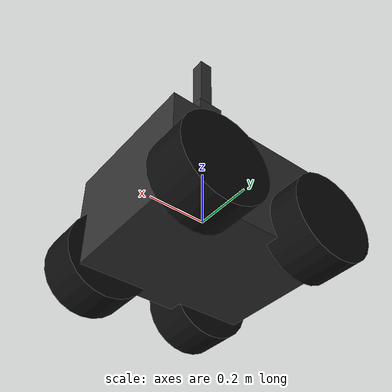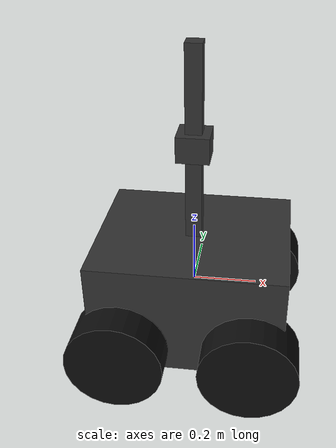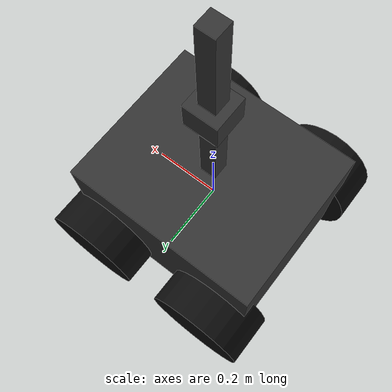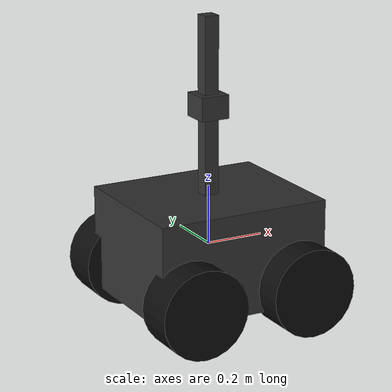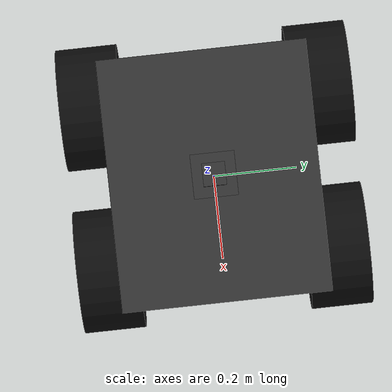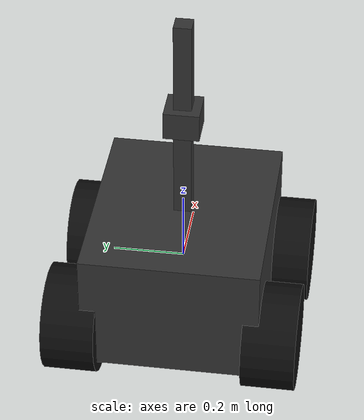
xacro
<?xml version="1.0"?>
<robot name="egrobots_rover">
  <material name="dark_grey">
    <color rgba="0.2 0.2 0.2 1"/>
  </material>
  <material name="black">
    <color rgba="0.05 0.05 0.05 1"/>
  </material>
  <link name="base_link">
    <visual>
      <geometry>
        <box size="0.6 0.5 0.35"/>
      </geometry>
      <origin xyz="0 0 0" rpy="0 0 0"/>
      <material name="dark_grey"/>
    </visual>
    <collision>
      <geometry>
        <box size="0.6 0.5 0.35"/>
      </geometry>
      <origin xyz="0 0 0" rpy="0 0 0"/>
    </collision>
    <inertial>
      <mass value="10.0"/>
      <inertia ixx="0.3" ixy="0.0" ixz="0.0" iyy="0.4" iyz="0.0" izz="0.5"/>
    </inertial>
  </link>
  <link name="wheel_front_left">
    <visual>
      <geometry>
        <cylinder radius="0.15" length="0.15"/>
      </geometry>
      <origin xyz="0 0 0" rpy="1.5708 0 0"/>
      <material name="black"/>
    </visual>
    <collision>
      <geometry>
        <cylinder radius="0.15" length="0.15"/>
      </geometry>
      <origin xyz="0 0 0" rpy="1.5708 0 0"/>
    </collision>
    <inertial>
      <mass value="1.0"/>
      <inertia ixx="0.0075" ixy="0.0" ixz="0.0" iyy="0.01125" iyz="0.0" izz="0.0075"/>
    </inertial>
  </link>

  <joint name="wheel_front_left_joint" type="continuous">
    <parent link="base_link"/>
    <child link="wheel_front_left"/>
    <origin xyz="0.2 0.28 -0.1" rpy="0 0 0"/>
    <axis xyz="0 1 0"/>
  </joint>
  <link name="wheel_front_right">
    <visual>
      <geometry>
        <cylinder radius="0.15" length="0.15"/>
      </geometry>
      <origin xyz="0 0 0" rpy="1.5708 0 0"/>
      <material name="black"/>
    </visual>
    <collision>
      <geometry>
        <cylinder radius="0.15" length="0.15"/>
      </geometry>
      <origin xyz="0 0 0" rpy="1.5708 0 0"/>
    </collision>
    <inertial>
      <mass value="1.0"/>
      <inertia ixx="0.0075" ixy="0.0" ixz="0.0" iyy="0.01125" iyz="0.0" izz="0.0075"/>
    </inertial>
  </link>

  <joint name="wheel_front_right_joint" type="continuous">
    <parent link="base_link"/>
    <child link="wheel_front_right"/>
    <origin xyz="0.2 -0.28 -0.1" rpy="0 0 0"/>
    <axis xyz="0 1 0"/>
  </joint>

  <link name="wheel_rear_left">
    <visual>
      <geometry>
        <cylinder radius="0.15" length="0.15"/>
      </geometry>
      <origin xyz="0 0 0" rpy="1.5708 0 0"/>
      <material name="black"/>
    </visual>
    <collision>
      <geometry>
        <cylinder radius="0.15" length="0.15"/>
      </geometry>
      <origin xyz="0 0 0" rpy="1.5708 0 0"/>
    </collision>
    <inertial>
      <mass value="1.0"/>
      <inertia ixx="0.0075" ixy="0.0" ixz="0.0" iyy="0.01125" iyz="0.0" izz="0.0075"/>
    </inertial>
  </link>

  <joint name="wheel_rear_left_joint" type="continuous">
    <parent link="base_link"/>
    <child link="wheel_rear_left"/>
    <origin xyz="-0.2 0.28 -0.1" rpy="0 0 0"/>
    <axis xyz="0 1 0"/>
  </joint>

  <link name="wheel_rear_right">
    <visual>
      <geometry>
        <cylinder radius="0.15" length="0.15"/>
      </geometry>
      <origin xyz="0 0 0" rpy="1.5708 0 0"/>
      <material name="black"/>
    </visual>
    <collision>
      <geometry>
        <cylinder radius="0.15" length="0.15"/>
      </geometry>
      <origin xyz="0 0 0" rpy="1.5708 0 0"/>
    </collision>
    <inertial>
      <mass value="1.0"/>
      <inertia ixx="0.0075" ixy="0.0" ixz="0.0" iyy="0.01125" iyz="0.0" izz="0.0075"/>
    </inertial>
  </link>

  <joint name="wheel_rear_right_joint" type="continuous">
    <parent link="base_link"/>
    <child link="wheel_rear_right"/>
    <origin xyz="-0.2 -0.28 -0.1" rpy="0 0 0"/>
    <axis xyz="0 1 0"/>
  </joint>
  <link name="mast">
    <visual>
      <geometry>
        <box size="0.05 0.05 0.6"/>
      </geometry>
      <origin xyz="0 0 0" rpy="0 0 0"/>
      <material name="dark_grey"/>
    </visual>
    <collision>
      <geometry>
        <box size="0.05 0.05 0.6"/>
      </geometry>
      <origin xyz="0 0 0" rpy="0 0 0"/>
    </collision>
    <inertial>
      <mass value="0.5"/>
      <inertia ixx="0.01" ixy="0.0" ixz="0.0" iyy="0.01" iyz="0.0" izz="0.01"/>
    </inertial>
  </link>

  <joint name="mast_joint" type="fixed">
    <parent link="base_link"/>
    <child link="mast"/>
    <origin xyz="0 0 0.475" rpy="0 0 0"/>
  </joint>
/  <link name="sensor_mount">
    <visual>
      <geometry>
        <box size="0.1 0.1 0.08"/>
      </geometry>
      <origin xyz="0 0 0" rpy="0 0 0"/>
      <material name="dark_grey"/>
    </visual>
    <collision>
      <geometry>
        <box size="0.1 0.1 0.08"/>
      </geometry>
      <origin xyz="0 0 0" rpy="0 0 0"/>
    </collision>
    <inertial>
      <mass value="0.2"/>
      <inertia ixx="0.001" ixy="0.0" ixz="0.0" iyy="0.001" iyz="0.0" izz="0.001"/>
    </inertial>
  </link>

  <joint name="sensor_mount_joint" type="fixed">
    <parent link="mast"/>
    <child link="sensor_mount"/>
    <origin xyz="0 0 0" rpy="0 0 0"/>
  </joint>

  <!-- IMU, mounted on the chassis. Its yaw measurement is independent of the
       wheels, so it is unaffected by the sideways scrub that corrupts wheel
       odometry on a skid-steer platform. -->
  <link name="imu_link">
    <inertial>
      <mass value="0.01"/>
      <inertia ixx="1e-6" ixy="0.0" ixz="0.0" iyy="1e-6" iyz="0.0" izz="1e-6"/>
    </inertial>
  </link>

  <joint name="imu_joint" type="fixed">
    <parent link="base_link"/>
    <child link="imu_link"/>
    <origin xyz="0 0 0.1" rpy="0 0 0"/>
  </joint>
  <gazebo reference="base_link">
    <material>Gazebo/DarkGrey</material>
  </gazebo>

  <gazebo reference="wheel_front_left">
    <material>Gazebo/Black</material>
    <mu1>0.3</mu1>
    <mu2>0.3</mu2>
  </gazebo>
  <gazebo reference="wheel_front_right">
    <material>Gazebo/Black</material>
    <mu1>0.3</mu1>
    <mu2>0.3</mu2>
  </gazebo>
  <gazebo reference="wheel_rear_left">
    <material>Gazebo/Black</material>
    <mu1>0.3</mu1>
    <mu2>0.3</mu2>
  </gazebo>
  <gazebo reference="wheel_rear_right">
    <material>Gazebo/Black</material>
    <mu1>0.3</mu1>
    <mu2>0.3</mu2>
  </gazebo>

  <gazebo reference="mast">
    <material>Gazebo/DarkGrey</material>
  </gazebo>

  <gazebo reference="sensor_mount">
    <material>Gazebo/Black</material>
  </gazebo>

  <gazebo reference="imu_link">
    <gravity>true</gravity>
    <sensor name="imu_sensor" type="imu">
      <always_on>true</always_on>
      <update_rate>100</update_rate>
      <visualize>false</visualize>
      <plugin name="imu_plugin" filename="libgazebo_ros_imu_sensor.so">
        <ros>
          <namespace>/</namespace>
          <remapping>~/out:=imu/data</remapping>
        </ros>
        <frame_name>imu_link</frame_name>
        <initial_orientation_as_reference>false</initial_orientation_as_reference>
      </plugin>
      <imu>
        <angular_velocity>
          <z>
            <noise type="gaussian">
              <mean>0.0</mean>
              <stddev>2e-4</stddev>
            </noise>
          </z>
        </angular_velocity>
      </imu>
    </sensor>
  </gazebo>

  <gazebo>
    <plugin name="joint_state_publisher" filename="libgazebo_ros_joint_state_publisher.so">
      <ros>
        <namespace>/</namespace>
      </ros>
      <update_rate>30</update_rate>
      <joint_name>wheel_front_left_joint</joint_name>
      <joint_name>wheel_front_right_joint</joint_name>
      <joint_name>wheel_rear_left_joint</joint_name>
      <joint_name>wheel_rear_right_joint</joint_name>
    </plugin>
  </gazebo>
  <gazebo reference="sensor_mount">
    <material>Gazebo/Black</material>
    <sensor name="lidar_sensor" type="ray">
      <pose>0 0 0.045 0 0 0</pose>
      <visualize>true</visualize>
      <update_rate>10</update_rate>
      <ray>
        <scan>
          <horizontal>
            <samples>360</samples>
            <resolution>1</resolution>
            <min_angle>-3.14159</min_angle>
            <max_angle>3.14159</max_angle>
          </horizontal>
        </scan>
        <range>
          <min>0.12</min>
          <max>10.0</max>
          <resolution>0.015</resolution>
        </range>
      </ray>
      <plugin name="lidar_plugin" filename="libgazebo_ros_ray_sensor.so">
        <ros>
          <namespace>/</namespace>
          <remapping>~/out:=scan</remapping>
        </ros>
        <output_type>sensor_msgs/LaserScan</output_type>
        <frame_name>sensor_mount</frame_name>
      </plugin>
    </sensor>
  </gazebo>

  <ros2_control name="EgrobotsRoverSystem" type="system">
    <hardware>
      <plugin>gazebo_ros2_control/GazeboSystem</plugin>
    </hardware>
    <joint name="wheel_front_left_joint">
      <command_interface name="velocity"/>
      <state_interface name="velocity"/>
      <state_interface name="position"/>
    </joint>
    <joint name="wheel_front_right_joint">
      <command_interface name="velocity"/>
      <state_interface name="velocity"/>
      <state_interface name="position"/>
    </joint>
    <joint name="wheel_rear_left_joint">
      <command_interface name="velocity"/>
      <state_interface name="velocity"/>
      <state_interface name="position"/>
    </joint>
    <joint name="wheel_rear_right_joint">
      <command_interface name="velocity"/>
      <state_interface name="velocity"/>
      <state_interface name="position"/>
    </joint>
  </ros2_control>

  <gazebo>
    <plugin name="gazebo_ros2_control" filename="libgazebo_ros2_control.so">
      <parameters>$(find egrobots_rover_navigation)/config/ros2_controllers.yaml</parameters>
    </plugin>
  </gazebo>

</robot>
